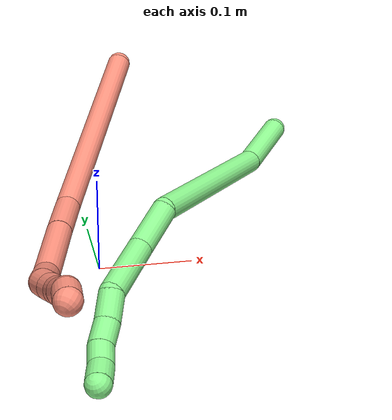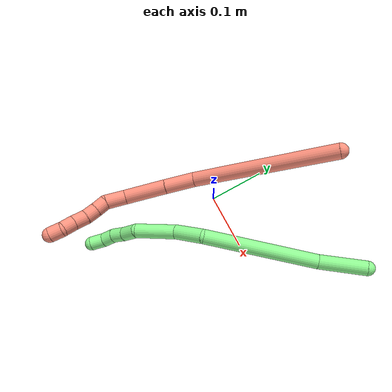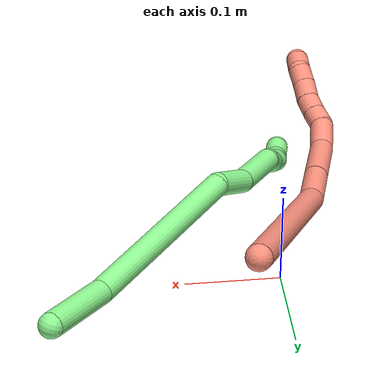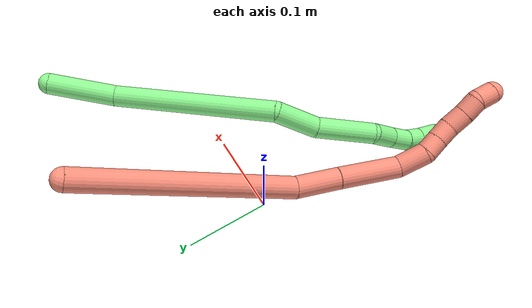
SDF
<sdf version="1.7">
 <world name="default">
  <model name="13">
   <static>0</static>
   <link name="13">
    <collision name="collision-cylinder-e_1_1_4">
     <pose>-0.008397 -0.036745 0.012504 1.2428 -0.213049 -0.152829</pose>
     <geometry><cylinder><radius>0.0125</radius><length>0.079424</length></cylinder></geometry>
     <surface>
      <friction><ode><mu>1.16</mu><mu2>1.16</mu2><slip1>0</slip1><slip2>0</slip2></ode></friction>
      <contact><ode><kp>1e+06</kp><kd>1</kd><max_vel>0</max_vel><min_depth>0.001</min_depth></ode></contact>
     </surface>
    </collision>
    <visual name="visual-cylinder-e_1_1_4">
     <pose>-0.008397 -0.036745 0.012504 1.2428 -0.213049 -0.152829</pose>
     <geometry><cylinder><radius>0.0125</radius><length>0.079424</length></cylinder></geometry>
     <material><ambient>0.564706 0.984314 0.572549 1</ambient></material>
    </visual>
    <collision name="collision-cylinder-e_2_4_5">
     <pose>-0.039381 -0.152135 0.078798 0.97092 -0.232767 -0.123202</pose>
     <geometry><cylinder><radius>0.0125</radius><length>0.195843</length></cylinder></geometry>
     <surface>
      <friction><ode><mu>1.16</mu><mu2>1.16</mu2><slip1>0</slip1><slip2>0</slip2></ode></friction>
      <contact><ode><kp>1e+06</kp><kd>1</kd><max_vel>0</max_vel><min_depth>0.001</min_depth></ode></contact>
     </surface>
    </collision>
    <visual name="visual-cylinder-e_2_4_5">
     <pose>-0.039381 -0.152135 0.078798 0.97092 -0.232767 -0.123202</pose>
     <geometry><cylinder><radius>0.0125</radius><length>0.195843</length></cylinder></geometry>
     <material><ambient>0.564706 0.984314 0.572549 1</ambient></material>
    </visual>
    <collision name="collision-cylinder-e_3_5_6">
     <pose>-0.069739 -0.255914 0.134513 1.49436 -0.299027 -0.277293</pose>
     <geometry><cylinder><radius>0.0125</radius><length>0.052756</length></cylinder></geometry>
     <surface>
      <friction><ode><mu>1.16</mu><mu2>1.16</mu2><slip1>0</slip1><slip2>0</slip2></ode></friction>
      <contact><ode><kp>1e+06</kp><kd>1</kd><max_vel>0</max_vel><min_depth>0.001</min_depth></ode></contact>
     </surface>
    </collision>
    <visual name="visual-cylinder-e_3_5_6">
     <pose>-0.069739 -0.255914 0.134513 1.49436 -0.299027 -0.277293</pose>
     <geometry><cylinder><radius>0.0125</radius><length>0.052756</length></cylinder></geometry>
     <material><ambient>0.564706 0.984314 0.572549 1</ambient></material>
    </visual>
    <collision name="collision-cylinder-e_4_6_7">
     <pose>-0.081791 -0.314923 0.146974 1.26926 -0.12009 -0.088462</pose>
     <geometry><cylinder><radius>0.0125</radius><length>0.071466</length></cylinder></geometry>
     <surface>
      <friction><ode><mu>1.16</mu><mu2>1.16</mu2><slip1>0</slip1><slip2>0</slip2></ode></friction>
      <contact><ode><kp>1e+06</kp><kd>1</kd><max_vel>0</max_vel><min_depth>0.001</min_depth></ode></contact>
     </surface>
    </collision>
    <visual name="visual-cylinder-e_4_6_7">
     <pose>-0.081791 -0.314923 0.146974 1.26926 -0.12009 -0.088462</pose>
     <geometry><cylinder><radius>0.0125</radius><length>0.071466</length></cylinder></geometry>
     <material><ambient>0.564706 0.984314 0.572549 1</ambient></material>
    </visual>
    <collision name="collision-cylinder-e_5_7_8">
     <pose>-0.086249 -0.363394 0.15516 1.73043 -0.011977 -0.01406</pose>
     <geometry><cylinder><radius>0.0125</radius><length>0.02957</length></cylinder></geometry>
     <surface>
      <friction><ode><mu>1.16</mu><mu2>1.16</mu2><slip1>0</slip1><slip2>0</slip2></ode></friction>
      <contact><ode><kp>1e+06</kp><kd>1</kd><max_vel>0</max_vel><min_depth>0.001</min_depth></ode></contact>
     </surface>
    </collision>
    <visual name="visual-cylinder-e_5_7_8">
     <pose>-0.086249 -0.363394 0.15516 1.73043 -0.011977 -0.01406</pose>
     <geometry><cylinder><radius>0.0125</radius><length>0.02957</length></cylinder></geometry>
     <material><ambient>0.564706 0.984314 0.572549 1</ambient></material>
    </visual>
    <collision name="collision-cylinder-e_6_8_9">
     <pose>-0.08703 -0.390428 0.152692 1.58028 -0.048543 -0.049005</pose>
     <geometry><cylinder><radius>0.0125</radius><length>0.024907</length></cylinder></geometry>
     <surface>
      <friction><ode><mu>1.16</mu><mu2>1.16</mu2><slip1>0</slip1><slip2>0</slip2></ode></friction>
      <contact><ode><kp>1e+06</kp><kd>1</kd><max_vel>0</max_vel><min_depth>0.001</min_depth></ode></contact>
     </surface>
    </collision>
    <visual name="visual-cylinder-e_6_8_9">
     <pose>-0.08703 -0.390428 0.152692 1.58028 -0.048543 -0.049005</pose>
     <geometry><cylinder><radius>0.0125</radius><length>0.024907</length></cylinder></geometry>
     <material><ambient>0.564706 0.984314 0.572549 1</ambient></material>
    </visual>
    <collision name="collision-cylinder-e_7_9_10">
     <pose>-0.085313 -0.413671 0.152801 1.54977 0.211572 0.207201</pose>
     <geometry><cylinder><radius>0.0125</radius><length>0.022107</length></cylinder></geometry>
     <surface>
      <friction><ode><mu>1.16</mu><mu2>1.16</mu2><slip1>0</slip1><slip2>0</slip2></ode></friction>
      <contact><ode><kp>1e+06</kp><kd>1</kd><max_vel>0</max_vel><min_depth>0.001</min_depth></ode></contact>
     </surface>
    </collision>
    <visual name="visual-cylinder-e_7_9_10">
     <pose>-0.085313 -0.413671 0.152801 1.54977 0.211572 0.207201</pose>
     <geometry><cylinder><radius>0.0125</radius><length>0.022107</length></cylinder></geometry>
     <material><ambient>0.564706 0.984314 0.572549 1</ambient></material>
    </visual>
    <collision name="collision-cylinder-e_8_10_2">
     <pose>-0.080415 -0.435416 0.157125 1.21248 0.217135 0.150856</pose>
     <geometry><cylinder><radius>0.0125</radius><length>0.023927</length></cylinder></geometry>
     <surface>
      <friction><ode><mu>1.16</mu><mu2>1.16</mu2><slip1>0</slip1><slip2>0</slip2></ode></friction>
      <contact><ode><kp>1e+06</kp><kd>1</kd><max_vel>0</max_vel><min_depth>0.001</min_depth></ode></contact>
     </surface>
    </collision>
    <visual name="visual-cylinder-e_8_10_2">
     <pose>-0.080415 -0.435416 0.157125 1.21248 0.217135 0.150856</pose>
     <geometry><cylinder><radius>0.0125</radius><length>0.023927</length></cylinder></geometry>
     <material><ambient>0.564706 0.984314 0.572549 1</ambient></material>
    </visual>
    <collision name="collision-sphere-2">
     <pose>-0.077837 -0.446357 0.161222 0 -0 0</pose>
     <geometry><sphere><radius>0.0125</radius></sphere></geometry>
     <surface>
      <friction><ode><mu>1.16</mu><mu2>1.16</mu2><slip1>0</slip1><slip2>0</slip2></ode></friction>
      <contact><ode><kp>1e+06</kp><kd>1</kd><max_vel>0</max_vel><min_depth>0.001</min_depth></ode></contact>
     </surface>
    </collision>
    <visual name="visual-sphere-2">
     <pose>-0.077837 -0.446357 0.161222 0 -0 0</pose>
     <geometry><sphere><radius>0.0125</radius></sphere></geometry>
     <material><ambient>0.564706 0.984314 0.572549 1</ambient></material>
    </visual>
    <collision name="collision-sphere-10">
     <pose>-0.082992 -0.424475 0.153028 0 -0 0</pose>
     <geometry><sphere><radius>0.0125</radius></sphere></geometry>
     <surface>
      <friction><ode><mu>1.16</mu><mu2>1.16</mu2><slip1>0</slip1><slip2>0</slip2></ode></friction>
      <contact><ode><kp>1e+06</kp><kd>1</kd><max_vel>0</max_vel><min_depth>0.001</min_depth></ode></contact>
     </surface>
    </collision>
    <visual name="visual-sphere-10">
     <pose>-0.082992 -0.424475 0.153028 0 -0 0</pose>
     <geometry><sphere><radius>0.0125</radius></sphere></geometry>
     <material><ambient>0.564706 0.984314 0.572549 1</ambient></material>
    </visual>
    <collision name="collision-sphere-9">
     <pose>-0.087635 -0.402866 0.152574 0 -0 0</pose>
     <geometry><sphere><radius>0.0125</radius></sphere></geometry>
     <surface>
      <friction><ode><mu>1.16</mu><mu2>1.16</mu2><slip1>0</slip1><slip2>0</slip2></ode></friction>
      <contact><ode><kp>1e+06</kp><kd>1</kd><max_vel>0</max_vel><min_depth>0.001</min_depth></ode></contact>
     </surface>
    </collision>
    <visual name="visual-sphere-9">
     <pose>-0.087635 -0.402866 0.152574 0 -0 0</pose>
     <geometry><sphere><radius>0.0125</radius></sphere></geometry>
     <material><ambient>0.564706 0.984314 0.572549 1</ambient></material>
    </visual>
    <collision name="collision-sphere-4">
     <pose>-0.016794 -0.07349 0.025008 0 -0 0</pose>
     <geometry><sphere><radius>0.0125</radius></sphere></geometry>
     <surface>
      <friction><ode><mu>1.16</mu><mu2>1.16</mu2><slip1>0</slip1><slip2>0</slip2></ode></friction>
      <contact><ode><kp>1e+06</kp><kd>1</kd><max_vel>0</max_vel><min_depth>0.001</min_depth></ode></contact>
     </surface>
    </collision>
    <visual name="visual-sphere-4">
     <pose>-0.016794 -0.07349 0.025008 0 -0 0</pose>
     <geometry><sphere><radius>0.0125</radius></sphere></geometry>
     <material><ambient>0.564706 0.984314 0.572549 1</ambient></material>
    </visual>
    <collision name="collision-sphere-1">
     <geometry><sphere><radius>0.0125</radius></sphere></geometry>
     <surface>
      <friction><ode><mu>1.16</mu><mu2>1.16</mu2><slip1>0</slip1><slip2>0</slip2></ode></friction>
      <contact><ode><kp>1e+06</kp><kd>1</kd><max_vel>0</max_vel><min_depth>0.001</min_depth></ode></contact>
     </surface>
    </collision>
    <visual name="visual-sphere-1">
     <geometry><sphere><radius>0.0125</radius></sphere></geometry>
     <material><ambient>0.564706 0.984314 0.572549 1</ambient></material>
    </visual>
    <collision name="collision-sphere-8">
     <pose>-0.086426 -0.37799 0.15281 0 -0 0</pose>
     <geometry><sphere><radius>0.0125</radius></sphere></geometry>
     <surface>
      <friction><ode><mu>1.16</mu><mu2>1.16</mu2><slip1>0</slip1><slip2>0</slip2></ode></friction>
      <contact><ode><kp>1e+06</kp><kd>1</kd><max_vel>0</max_vel><min_depth>0.001</min_depth></ode></contact>
     </surface>
    </collision>
    <visual name="visual-sphere-8">
     <pose>-0.086426 -0.37799 0.15281 0 -0 0</pose>
     <geometry><sphere><radius>0.0125</radius></sphere></geometry>
     <material><ambient>0.564706 0.984314 0.572549 1</ambient></material>
    </visual>
    <collision name="collision-sphere-5">
     <pose>-0.061969 -0.23078 0.132588 0 -0 0</pose>
     <geometry><sphere><radius>0.0125</radius></sphere></geometry>
     <surface>
      <friction><ode><mu>1.16</mu><mu2>1.16</mu2><slip1>0</slip1><slip2>0</slip2></ode></friction>
      <contact><ode><kp>1e+06</kp><kd>1</kd><max_vel>0</max_vel><min_depth>0.001</min_depth></ode></contact>
     </surface>
    </collision>
    <visual name="visual-sphere-5">
     <pose>-0.061969 -0.23078 0.132588 0 -0 0</pose>
     <geometry><sphere><radius>0.0125</radius></sphere></geometry>
     <material><ambient>0.564706 0.984314 0.572549 1</ambient></material>
    </visual>
    <collision name="collision-sphere-6">
     <pose>-0.07751 -0.281048 0.136438 0 -0 0</pose>
     <geometry><sphere><radius>0.0125</radius></sphere></geometry>
     <surface>
      <friction><ode><mu>1.16</mu><mu2>1.16</mu2><slip1>0</slip1><slip2>0</slip2></ode></friction>
      <contact><ode><kp>1e+06</kp><kd>1</kd><max_vel>0</max_vel><min_depth>0.001</min_depth></ode></contact>
     </surface>
    </collision>
    <visual name="visual-sphere-6">
     <pose>-0.07751 -0.281048 0.136438 0 -0 0</pose>
     <geometry><sphere><radius>0.0125</radius></sphere></geometry>
     <material><ambient>0.564706 0.984314 0.572549 1</ambient></material>
    </visual>
    <collision name="collision-sphere-7">
     <pose>-0.086072 -0.348798 0.15751 0 -0 0</pose>
     <geometry><sphere><radius>0.0125</radius></sphere></geometry>
     <surface>
      <friction><ode><mu>1.16</mu><mu2>1.16</mu2><slip1>0</slip1><slip2>0</slip2></ode></friction>
      <contact><ode><kp>1e+06</kp><kd>1</kd><max_vel>0</max_vel><min_depth>0.001</min_depth></ode></contact>
     </surface>
    </collision>
    <visual name="visual-sphere-7">
     <pose>-0.086072 -0.348798 0.15751 0 -0 0</pose>
     <geometry><sphere><radius>0.0125</radius></sphere></geometry>
     <material><ambient>0.564706 0.984314 0.572549 1</ambient></material>
    </visual>
    <inertial>
     <pose>-0.052864 -0.217507 0.099108 0 -0 0</pose>
     <mass>0.5</mass>
     <inertia>
      <ixx>0.000616</ixx>
      <ixy>0</ixy>
      <ixz>0</ixz>
      <iyy>0.000275</iyy>
      <iyz>0</iyz>
      <izz>0.00078</izz>
     </inertia>
    </inertial>
   </link>
   <pose>0.234539 0.157531 0.08587 0.473241 -0.193893 -0.458899</pose>
  </model>
  <model name="16">
   <static>0</static>
   <link name="16">
    <collision name="collision-cylinder-e_1_1_4">
     <pose>-0.014466 -0.020532 0.116773 0.17405 -0.121407 -0.010605</pose>
     <geometry><cylinder><radius>0.0125</radius><length>0.238886</length></cylinder></geometry>
     <surface>
      <friction><ode><mu>1.16</mu><mu2>1.16</mu2><slip1>0</slip1><slip2>0</slip2></ode></friction>
      <contact><ode><kp>1e+06</kp><kd>1</kd><max_vel>0</max_vel><min_depth>0.001</min_depth></ode></contact>
     </surface>
    </collision>
    <visual name="visual-cylinder-e_1_1_4">
     <pose>-0.014466 -0.020532 0.116773 0.17405 -0.121407 -0.010605</pose>
     <geometry><cylinder><radius>0.0125</radius><length>0.238886</length></cylinder></geometry>
     <material><ambient>1 0.576471 0.494118 1</ambient></material>
    </visual>
    <collision name="collision-cylinder-e_2_4_5">
     <pose>-0.03094 -0.052608 0.255898 0.476703 -0.079683 -0.01937</pose>
     <geometry><cylinder><radius>0.0125</radius><length>0.050475</length></cylinder></geometry>
     <surface>
      <friction><ode><mu>1.16</mu><mu2>1.16</mu2><slip1>0</slip1><slip2>0</slip2></ode></friction>
      <contact><ode><kp>1e+06</kp><kd>1</kd><max_vel>0</max_vel><min_depth>0.001</min_depth></ode></contact>
     </surface>
    </collision>
    <visual name="visual-cylinder-e_2_4_5">
     <pose>-0.03094 -0.052608 0.255898 0.476703 -0.079683 -0.01937</pose>
     <geometry><cylinder><radius>0.0125</radius><length>0.050475</length></cylinder></geometry>
     <material><ambient>1 0.576471 0.494118 1</ambient></material>
    </visual>
    <collision name="collision-cylinder-e_3_5_6">
     <pose>-0.036821 -0.079269 0.310874 0.433934 -0.10727 -0.023668</pose>
     <geometry><cylinder><radius>0.0125</radius><length>0.072327</length></cylinder></geometry>
     <surface>
      <friction><ode><mu>1.16</mu><mu2>1.16</mu2><slip1>0</slip1><slip2>0</slip2></ode></friction>
      <contact><ode><kp>1e+06</kp><kd>1</kd><max_vel>0</max_vel><min_depth>0.001</min_depth></ode></contact>
     </surface>
    </collision>
    <visual name="visual-cylinder-e_3_5_6">
     <pose>-0.036821 -0.079269 0.310874 0.433934 -0.10727 -0.023668</pose>
     <geometry><cylinder><radius>0.0125</radius><length>0.072327</length></cylinder></geometry>
     <material><ambient>1 0.576471 0.494118 1</ambient></material>
    </visual>
    <collision name="collision-cylinder-e_4_6_7">
     <pose>-0.040119 -0.107579 0.354932 0.856668 0.032819 0.014987</pose>
     <geometry><cylinder><radius>0.0125</radius><length>0.034936</length></cylinder></geometry>
     <surface>
      <friction><ode><mu>1.16</mu><mu2>1.16</mu2><slip1>0</slip1><slip2>0</slip2></ode></friction>
      <contact><ode><kp>1e+06</kp><kd>1</kd><max_vel>0</max_vel><min_depth>0.001</min_depth></ode></contact>
     </surface>
    </collision>
    <visual name="visual-cylinder-e_4_6_7">
     <pose>-0.040119 -0.107579 0.354932 0.856668 0.032819 0.014987</pose>
     <geometry><cylinder><radius>0.0125</radius><length>0.034936</length></cylinder></geometry>
     <material><ambient>1 0.576471 0.494118 1</ambient></material>
    </visual>
    <collision name="collision-cylinder-e_5_7_8">
     <pose>-0.042924 -0.129009 0.370967 1.06147 -0.343761 -0.203064</pose>
     <geometry><cylinder><radius>0.0125</radius><length>0.020043</length></cylinder></geometry>
     <surface>
      <friction><ode><mu>1.16</mu><mu2>1.16</mu2><slip1>0</slip1><slip2>0</slip2></ode></friction>
      <contact><ode><kp>1e+06</kp><kd>1</kd><max_vel>0</max_vel><min_depth>0.001</min_depth></ode></contact>
     </surface>
    </collision>
    <visual name="visual-cylinder-e_5_7_8">
     <pose>-0.042924 -0.129009 0.370967 1.06147 -0.343761 -0.203064</pose>
     <geometry><cylinder><radius>0.0125</radius><length>0.020043</length></cylinder></geometry>
     <material><ambient>1 0.576471 0.494118 1</ambient></material>
    </visual>
    <collision name="collision-cylinder-e_6_8_9">
     <pose>-0.049012 -0.145863 0.380057 1.09045 -0.272086 -0.16568</pose>
     <geometry><cylinder><radius>0.0125</radius><length>0.020174</length></cylinder></geometry>
     <surface>
      <friction><ode><mu>1.16</mu><mu2>1.16</mu2><slip1>0</slip1><slip2>0</slip2></ode></friction>
      <contact><ode><kp>1e+06</kp><kd>1</kd><max_vel>0</max_vel><min_depth>0.001</min_depth></ode></contact>
     </surface>
    </collision>
    <visual name="visual-cylinder-e_6_8_9">
     <pose>-0.049012 -0.145863 0.380057 1.09045 -0.272086 -0.16568</pose>
     <geometry><cylinder><radius>0.0125</radius><length>0.020174</length></cylinder></geometry>
     <material><ambient>1 0.576471 0.494118 1</ambient></material>
    </visual>
    <collision name="collision-cylinder-e_7_9_10">
     <pose>-0.05263 -0.164293 0.389695 1.08765 -0.0817 -0.049417</pose>
     <geometry><cylinder><radius>0.0125</radius><length>0.022241</length></cylinder></geometry>
     <surface>
      <friction><ode><mu>1.16</mu><mu2>1.16</mu2><slip1>0</slip1><slip2>0</slip2></ode></friction>
      <contact><ode><kp>1e+06</kp><kd>1</kd><max_vel>0</max_vel><min_depth>0.001</min_depth></ode></contact>
     </surface>
    </collision>
    <visual name="visual-cylinder-e_7_9_10">
     <pose>-0.05263 -0.164293 0.389695 1.08765 -0.0817 -0.049417</pose>
     <geometry><cylinder><radius>0.0125</radius><length>0.022241</length></cylinder></geometry>
     <material><ambient>1 0.576471 0.494118 1</ambient></material>
    </visual>
    <collision name="collision-cylinder-e_8_10_11">
     <pose>-0.054564 -0.183583 0.398449 1.20721 -0.100905 -0.069599</pose>
     <geometry><cylinder><radius>0.0125</radius><length>0.020378</length></cylinder></geometry>
     <surface>
      <friction><ode><mu>1.16</mu><mu2>1.16</mu2><slip1>0</slip1><slip2>0</slip2></ode></friction>
      <contact><ode><kp>1e+06</kp><kd>1</kd><max_vel>0</max_vel><min_depth>0.001</min_depth></ode></contact>
     </surface>
    </collision>
    <visual name="visual-cylinder-e_8_10_11">
     <pose>-0.054564 -0.183583 0.398449 1.20721 -0.100905 -0.069599</pose>
     <geometry><cylinder><radius>0.0125</radius><length>0.020378</length></cylinder></geometry>
     <material><ambient>1 0.576471 0.494118 1</ambient></material>
    </visual>
    <collision name="collision-cylinder-e_9_11_2">
     <pose>-0.05753 -0.199823 0.409534 0.73533 -0.189947 -0.073352</pose>
     <geometry><cylinder><radius>0.0125</radius><length>0.02054</length></cylinder></geometry>
     <surface>
      <friction><ode><mu>1.16</mu><mu2>1.16</mu2><slip1>0</slip1><slip2>0</slip2></ode></friction>
      <contact><ode><kp>1e+06</kp><kd>1</kd><max_vel>0</max_vel><min_depth>0.001</min_depth></ode></contact>
     </surface>
    </collision>
    <visual name="visual-cylinder-e_9_11_2">
     <pose>-0.05753 -0.199823 0.409534 0.73533 -0.189947 -0.073352</pose>
     <geometry><cylinder><radius>0.0125</radius><length>0.02054</length></cylinder></geometry>
     <material><ambient>1 0.576471 0.494118 1</ambient></material>
    </visual>
    <collision name="collision-sphere-2">
     <pose>-0.059469 -0.206589 0.417013 0 -0 0</pose>
     <geometry><sphere><radius>0.0125</radius></sphere></geometry>
     <surface>
      <friction><ode><mu>1.16</mu><mu2>1.16</mu2><slip1>0</slip1><slip2>0</slip2></ode></friction>
      <contact><ode><kp>1e+06</kp><kd>1</kd><max_vel>0</max_vel><min_depth>0.001</min_depth></ode></contact>
     </surface>
    </collision>
    <visual name="visual-sphere-2">
     <pose>-0.059469 -0.206589 0.417013 0 -0 0</pose>
     <geometry><sphere><radius>0.0125</radius></sphere></geometry>
     <material><ambient>1 0.576471 0.494118 1</ambient></material>
    </visual>
    <collision name="collision-sphere-11">
     <pose>-0.055591 -0.193057 0.402055 0 -0 0</pose>
     <geometry><sphere><radius>0.0125</radius></sphere></geometry>
     <surface>
      <friction><ode><mu>1.16</mu><mu2>1.16</mu2><slip1>0</slip1><slip2>0</slip2></ode></friction>
      <contact><ode><kp>1e+06</kp><kd>1</kd><max_vel>0</max_vel><min_depth>0.001</min_depth></ode></contact>
     </surface>
    </collision>
    <visual name="visual-sphere-11">
     <pose>-0.055591 -0.193057 0.402055 0 -0 0</pose>
     <geometry><sphere><radius>0.0125</radius></sphere></geometry>
     <material><ambient>1 0.576471 0.494118 1</ambient></material>
    </visual>
    <collision name="collision-sphere-10">
     <pose>-0.053538 -0.174108 0.394844 0 -0 0</pose>
     <geometry><sphere><radius>0.0125</radius></sphere></geometry>
     <surface>
      <friction><ode><mu>1.16</mu><mu2>1.16</mu2><slip1>0</slip1><slip2>0</slip2></ode></friction>
      <contact><ode><kp>1e+06</kp><kd>1</kd><max_vel>0</max_vel><min_depth>0.001</min_depth></ode></contact>
     </surface>
    </collision>
    <visual name="visual-sphere-10">
     <pose>-0.053538 -0.174108 0.394844 0 -0 0</pose>
     <geometry><sphere><radius>0.0125</radius></sphere></geometry>
     <material><ambient>1 0.576471 0.494118 1</ambient></material>
    </visual>
    <collision name="collision-sphere-9">
     <pose>-0.051723 -0.154479 0.384547 0 -0 0</pose>
     <geometry><sphere><radius>0.0125</radius></sphere></geometry>
     <surface>
      <friction><ode><mu>1.16</mu><mu2>1.16</mu2><slip1>0</slip1><slip2>0</slip2></ode></friction>
      <contact><ode><kp>1e+06</kp><kd>1</kd><max_vel>0</max_vel><min_depth>0.001</min_depth></ode></contact>
     </surface>
    </collision>
    <visual name="visual-sphere-9">
     <pose>-0.051723 -0.154479 0.384547 0 -0 0</pose>
     <geometry><sphere><radius>0.0125</radius></sphere></geometry>
     <material><ambient>1 0.576471 0.494118 1</ambient></material>
    </visual>
    <collision name="collision-sphere-4">
     <pose>-0.028931 -0.041064 0.233545 0 -0 0</pose>
     <geometry><sphere><radius>0.0125</radius></sphere></geometry>
     <surface>
      <friction><ode><mu>1.16</mu><mu2>1.16</mu2><slip1>0</slip1><slip2>0</slip2></ode></friction>
      <contact><ode><kp>1e+06</kp><kd>1</kd><max_vel>0</max_vel><min_depth>0.001</min_depth></ode></contact>
     </surface>
    </collision>
    <visual name="visual-sphere-4">
     <pose>-0.028931 -0.041064 0.233545 0 -0 0</pose>
     <geometry><sphere><radius>0.0125</radius></sphere></geometry>
     <material><ambient>1 0.576471 0.494118 1</ambient></material>
    </visual>
    <collision name="collision-sphere-1">
     <geometry><sphere><radius>0.0125</radius></sphere></geometry>
     <surface>
      <friction><ode><mu>1.16</mu><mu2>1.16</mu2><slip1>0</slip1><slip2>0</slip2></ode></friction>
      <contact><ode><kp>1e+06</kp><kd>1</kd><max_vel>0</max_vel><min_depth>0.001</min_depth></ode></contact>
     </surface>
    </collision>
    <visual name="visual-sphere-1">
     <geometry><sphere><radius>0.0125</radius></sphere></geometry>
     <material><ambient>1 0.576471 0.494118 1</ambient></material>
    </visual>
    <collision name="collision-sphere-8">
     <pose>-0.046301 -0.137246 0.375568 0 -0 0</pose>
     <geometry><sphere><radius>0.0125</radius></sphere></geometry>
     <surface>
      <friction><ode><mu>1.16</mu><mu2>1.16</mu2><slip1>0</slip1><slip2>0</slip2></ode></friction>
      <contact><ode><kp>1e+06</kp><kd>1</kd><max_vel>0</max_vel><min_depth>0.001</min_depth></ode></contact>
     </surface>
    </collision>
    <visual name="visual-sphere-8">
     <pose>-0.046301 -0.137246 0.375568 0 -0 0</pose>
     <geometry><sphere><radius>0.0125</radius></sphere></geometry>
     <material><ambient>1 0.576471 0.494118 1</ambient></material>
    </visual>
    <collision name="collision-sphere-5">
     <pose>-0.032949 -0.064151 0.278251 0 -0 0</pose>
     <geometry><sphere><radius>0.0125</radius></sphere></geometry>
     <surface>
      <friction><ode><mu>1.16</mu><mu2>1.16</mu2><slip1>0</slip1><slip2>0</slip2></ode></friction>
      <contact><ode><kp>1e+06</kp><kd>1</kd><max_vel>0</max_vel><min_depth>0.001</min_depth></ode></contact>
     </surface>
    </collision>
    <visual name="visual-sphere-5">
     <pose>-0.032949 -0.064151 0.278251 0 -0 0</pose>
     <geometry><sphere><radius>0.0125</radius></sphere></geometry>
     <material><ambient>1 0.576471 0.494118 1</ambient></material>
    </visual>
    <collision name="collision-sphere-6">
     <pose>-0.040693 -0.094386 0.343498 0 -0 0</pose>
     <geometry><sphere><radius>0.0125</radius></sphere></geometry>
     <surface>
      <friction><ode><mu>1.16</mu><mu2>1.16</mu2><slip1>0</slip1><slip2>0</slip2></ode></friction>
      <contact><ode><kp>1e+06</kp><kd>1</kd><max_vel>0</max_vel><min_depth>0.001</min_depth></ode></contact>
     </surface>
    </collision>
    <visual name="visual-sphere-6">
     <pose>-0.040693 -0.094386 0.343498 0 -0 0</pose>
     <geometry><sphere><radius>0.0125</radius></sphere></geometry>
     <material><ambient>1 0.576471 0.494118 1</ambient></material>
    </visual>
    <collision name="collision-sphere-7">
     <pose>-0.039546 -0.120771 0.366367 0 -0 0</pose>
     <geometry><sphere><radius>0.0125</radius></sphere></geometry>
     <surface>
      <friction><ode><mu>1.16</mu><mu2>1.16</mu2><slip1>0</slip1><slip2>0</slip2></ode></friction>
      <contact><ode><kp>1e+06</kp><kd>1</kd><max_vel>0</max_vel><min_depth>0.001</min_depth></ode></contact>
     </surface>
    </collision>
    <visual name="visual-sphere-7">
     <pose>-0.039546 -0.120771 0.366367 0 -0 0</pose>
     <geometry><sphere><radius>0.0125</radius></sphere></geometry>
     <material><ambient>1 0.576471 0.494118 1</ambient></material>
    </visual>
    <inertial>
     <pose>-0.028791 -0.068159 0.231995 0 -0 0</pose>
     <mass>0.5</mass>
     <inertia>
      <ixx>0.001178</ixx>
      <ixy>0</ixy>
      <ixz>0</ixz>
      <iyy>0.001148</iyy>
      <iyz>0</iyz>
      <izz>0.000404</izz>
     </inertia>
    </inertial>
   </link>
   <pose>0.052598 0.186537 0.168687 -2.0996 -0.535074 2.82785</pose>
  </model>
 </world>
</sdf>
